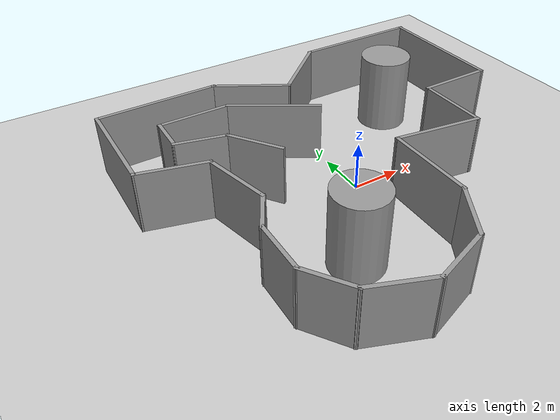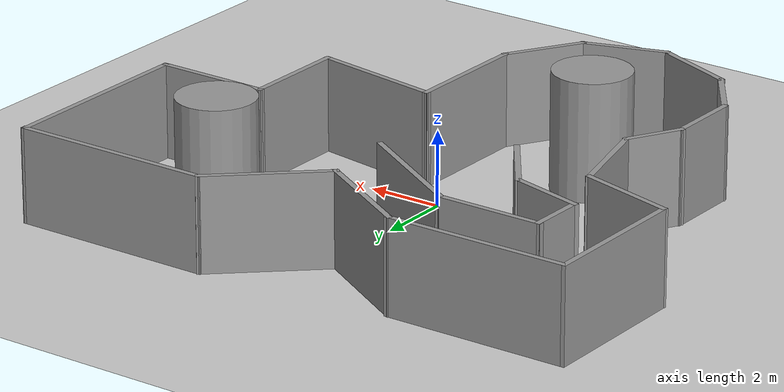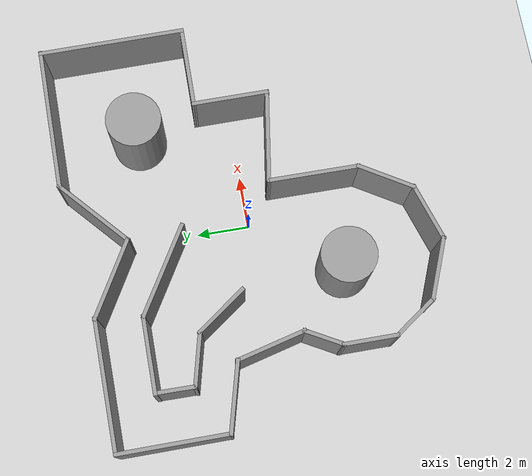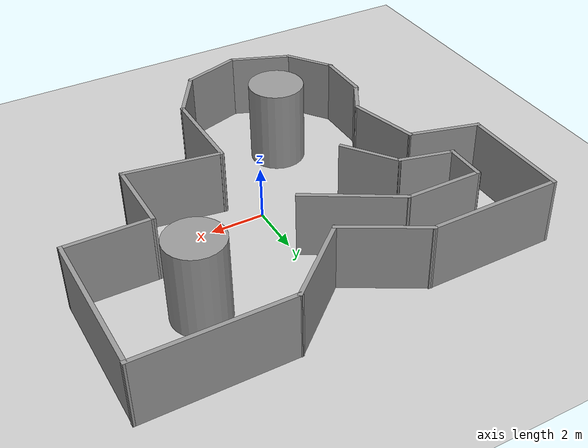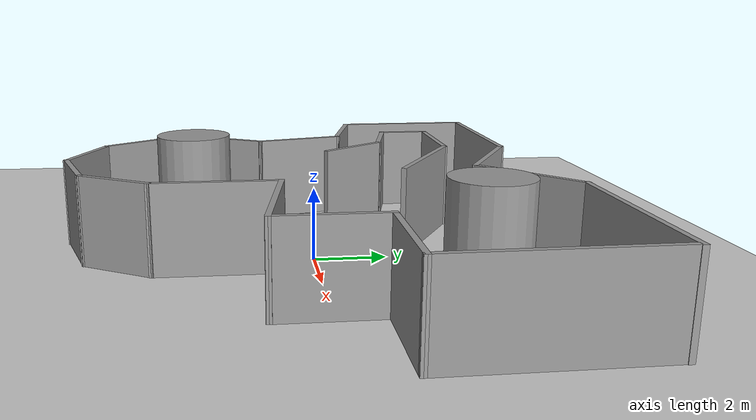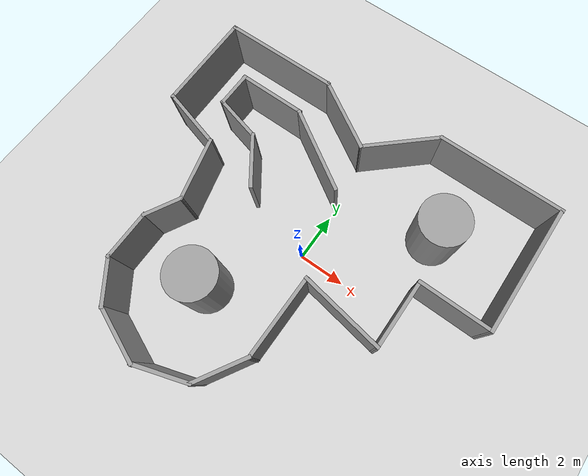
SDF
<sdf version="1.7">
 <world name="default">
  <light name="sun" type="directional">
   <pose>0 0 10 0 -0 0</pose>
   <diffuse>0.8 0.8 0.8 1</diffuse>
   <specular>0.2 0.2 0.2 1</specular>
   <attenuation>
    <range>1000</range>
    <constant>0.9</constant>
    <linear>0.01</linear>
    <quadratic>0.001</quadratic>
   </attenuation>
   <direction>-0.5 0.1 -0.9</direction>
   <spot><inner_angle>0</inner_angle><outer_angle>0</outer_angle><falloff>0</falloff></spot>
  </light>
  <model name="ground_plane">
   <static>1</static>
   <link name="link">
    <collision name="collision">
     <geometry><plane><normal>0 0 1</normal><size>100 100</size></plane></geometry>
     <surface>
      <contact><collide_bitmask>65535</collide_bitmask></contact>
      <friction><ode><mu>100</mu><mu2>50</mu2></ode></friction>
     </surface>
    </collision>
    <visual name="visual">
     <cast_shadows>0</cast_shadows>
     <geometry><plane><normal>0 0 1</normal><size>100 100</size></plane></geometry>
     <material>
      <script><uri>file://media/materials/scripts/gazebo.material</uri><name>Gazebo/Grey</name></script>
     </material>
    </visual>
   </link>
  </model>
  <gravity>0 0 -9.8</gravity>
  <magnetic_field>6e-06 2.3e-05 -4.2e-05</magnetic_field>
  <atmosphere type="adiabatic"/>
  <physics type="ode">
   <max_step_size>0.001</max_step_size>
   <real_time_factor>1</real_time_factor>
   <real_time_update_rate>1000</real_time_update_rate>
  </physics>
  <scene><ambient>0.4 0.4 0.4 1</ambient><background>0.7 0.7 0.7 1</background><shadows>1</shadows></scene>
  <audio><device>default</device></audio>
  <spherical_coordinates>
   <surface_model>EARTH_WGS84</surface_model>
   <latitude_deg>0</latitude_deg>
   <longitude_deg>0</longitude_deg>
   <elevation>0</elevation>
   <heading_deg>0</heading_deg>
  </spherical_coordinates>
  <model name="muri_mix">
   <pose>-0.192855 -0.0559 0 0 -0 0</pose>
   <link name="Wall_1">
    <collision name="Wall_1_Collision">
     <geometry><box><size>4.26138 0.15 2.5</size></box></geometry>
     <pose>0 0 1.25 0 -0 0</pose>
    </collision>
    <visual name="Wall_1_Visual">
     <pose>0 0 1.25 0 -0 0</pose>
     <geometry><box><size>4.26138 0.15 2.5</size></box></geometry>
     <material>
      <script><uri>file://media/materials/scripts/gazebo.material</uri><name>Gazebo/Grey</name></script>
      <ambient>1 1 1 1</ambient>
     </material>
     <meta><layer>0</layer></meta>
    </visual>
    <pose>-7.67157 4.10976 0 0 -0 1.57401</pose>
   </link>
   <link name="Wall_10">
    <collision name="Wall_10_Collision">
     <geometry><box><size>3.53515 0.15 2.5</size></box></geometry>
     <pose>0 0 1.25 0 -0 0</pose>
    </collision>
    <visual name="Wall_10_Visual">
     <pose>0 0 1.25 0 -0 0</pose>
     <geometry><box><size>3.53515 0.15 2.5</size></box></geometry>
     <material>
      <script><uri>file://media/materials/scripts/gazebo.material</uri><name>Gazebo/Grey</name></script>
      <ambient>1 1 1 1</ambient>
     </material>
     <meta><layer>0</layer></meta>
    </visual>
    <pose>1.21216 -2.58086 0 0 -0 -1.57575</pose>
   </link>
   <link name="Wall_11">
    <collision name="Wall_11_Collision">
     <geometry><box><size>2.322 0.15 2.5</size></box></geometry>
     <pose>0 0 1.25 0 -0 0</pose>
    </collision>
    <visual name="Wall_11_Visual">
     <pose>0 0 1.25 0 -0 0</pose>
     <geometry><box><size>2.322 0.15 2.5</size></box></geometry>
     <material>
      <script><uri>file://media/materials/scripts/gazebo.material</uri><name>Gazebo/Grey</name></script>
      <ambient>1 1 1 1</ambient>
     </material>
     <meta><layer>0</layer></meta>
    </visual>
    <pose>0.640187 -5.20166 0 0 -0 -2.11644</pose>
   </link>
   <link name="Wall_16">
    <collision name="Wall_16_Collision">
     <geometry><box><size>1.65465 0.15 2.5</size></box></geometry>
     <pose>0 0 1.25 0 -0 0</pose>
    </collision>
    <visual name="Wall_16_Visual">
     <pose>0 0 1.25 0 -0 0</pose>
     <geometry><box><size>1.65465 0.15 2.5</size></box></geometry>
     <material>
      <script><uri>file://media/materials/scripts/gazebo.material</uri><name>Gazebo/Grey</name></script>
      <ambient>1 1 1 1</ambient>
     </material>
     <meta><layer>0</layer></meta>
    </visual>
    <pose>-4.88204 -1.81965 0 0 -0 1.06422</pose>
   </link>
   <link name="Wall_18">
    <collision name="Wall_18_Collision">
     <geometry><box><size>2.75 0.15 2.5</size></box></geometry>
     <pose>0 0 1.25 0 -0 0</pose>
    </collision>
    <visual name="Wall_18_Visual">
     <pose>0 0 1.25 0 -0 0</pose>
     <geometry><box><size>2.75 0.15 2.5</size></box></geometry>
     <material>
      <script><uri>file://media/materials/scripts/gazebo.material</uri><name>Gazebo/Grey</name></script>
      <ambient>1 1 1 1</ambient>
     </material>
     <meta><layer>0</layer></meta>
    </visual>
    <pose>-6.40926 1.71762 0 0 -0 -0.261799</pose>
   </link>
   <link name="Wall_21">
    <collision name="Wall_21_Collision">
     <geometry><box><size>5.02028 0.15 2.5</size></box></geometry>
     <pose>0 0 1.25 0 -0 0</pose>
    </collision>
    <visual name="Wall_21_Visual">
     <pose>0 0 1.25 0 -0 0</pose>
     <geometry><box><size>5.02028 0.15 2.5</size></box></geometry>
     <material>
      <script><uri>file://media/materials/scripts/gazebo.material</uri><name>Gazebo/Grey</name></script>
      <ambient>1 1 1 1</ambient>
     </material>
     <meta><layer>0</layer></meta>
    </visual>
    <pose>-5.22302 6.18555 0 0 -0 0.00826</pose>
   </link>
   <link name="Wall_22">
    <collision name="Wall_22_Collision">
     <geometry><box><size>3.28763 0.15 2.5</size></box></geometry>
     <pose>0 0 1.25 0 -0 0</pose>
    </collision>
    <visual name="Wall_22_Visual">
     <pose>0 0 1.25 0 -0 0</pose>
     <geometry><box><size>3.28763 0.15 2.5</size></box></geometry>
     <material>
      <script><uri>file://media/materials/scripts/gazebo.material</uri><name>Gazebo/Grey</name></script>
      <ambient>1 1 1 1</ambient>
     </material>
     <meta><layer>0</layer></meta>
    </visual>
    <pose>-1.45568 5.41055 0 0 -0 -0.531497</pose>
   </link>
   <link name="Wall_26">
    <collision name="Wall_26_Collision">
     <geometry><box><size>3.42031 0.15 2.5</size></box></geometry>
     <pose>0 0 1.25 0 -0 0</pose>
    </collision>
    <visual name="Wall_26_Visual">
     <pose>0 0 1.25 0 -0 0</pose>
     <geometry><box><size>3.42031 0.15 2.5</size></box></geometry>
     <material>
      <script><uri>file://media/materials/scripts/gazebo.material</uri><name>Gazebo/Grey</name></script>
      <ambient>1 1 1 1</ambient>
     </material>
     <meta><layer>0</layer></meta>
    </visual>
    <pose>1.11407 5.70714 0 0 -0 0.731035</pose>
   </link>
   <link name="Wall_28">
    <collision name="Wall_28_Collision">
     <geometry><box><size>2.12243 0.15 2.5</size></box></geometry>
     <pose>0 0 1.25 0 -0 0</pose>
    </collision>
    <visual name="Wall_28_Visual">
     <pose>0 0 1.25 0 -0 0</pose>
     <geometry><box><size>2.12243 0.15 2.5</size></box></geometry>
     <material>
      <script><uri>file://media/materials/scripts/gazebo.material</uri><name>Gazebo/Grey</name></script>
      <ambient>1 1 1 1</ambient>
     </material>
     <meta><layer>0</layer></meta>
    </visual>
    <pose>-5.24706 -3.44621 0 0 -0 -1.5708</pose>
   </link>
   <link name="Wall_31">
    <collision name="Wall_31_Collision">
     <geometry><box><size>2.00158 0.15 2.5</size></box></geometry>
     <pose>0 0 1.25 0 -0 0</pose>
    </collision>
    <visual name="Wall_31_Visual">
     <pose>0 0 1.25 0 -0 0</pose>
     <geometry><box><size>2.00158 0.15 2.5</size></box></geometry>
     <material>
      <script><uri>file://media/materials/scripts/gazebo.material</uri><name>Gazebo/Grey</name></script>
      <ambient>1 1 1 1</ambient>
     </material>
     <meta><layer>0</layer></meta>
    </visual>
    <pose>-4.7146 -5.18978 0 0 -0 -0.958021</pose>
   </link>
   <link name="Wall_34">
    <collision name="Wall_34_Collision">
     <geometry><box><size>2.47274 0.15 2.5</size></box></geometry>
     <pose>0 0 1.25 0 -0 0</pose>
    </collision>
    <visual name="Wall_34_Visual">
     <pose>0 0 1.25 0 -0 0</pose>
     <geometry><box><size>2.47274 0.15 2.5</size></box></geometry>
     <material>
      <script><uri>file://media/materials/scripts/gazebo.material</uri><name>Gazebo/Grey</name></script>
      <ambient>1 1 1 1</ambient>
     </material>
     <meta><layer>0</layer></meta>
    </visual>
    <pose>-3.10334 -6.37721 0 0 -0 -0.379364</pose>
   </link>
   <link name="Wall_37">
    <collision name="Wall_37_Collision">
     <geometry><box><size>2.35761 0.15 2.5</size></box></geometry>
     <pose>0 0 1.25 0 -0 0</pose>
    </collision>
    <visual name="Wall_37_Visual">
     <pose>0 0 1.25 0 -0 0</pose>
     <geometry><box><size>2.35761 0.15 2.5</size></box></geometry>
     <material>
      <script><uri>file://media/materials/scripts/gazebo.material</uri><name>Gazebo/Grey</name></script>
      <ambient>1 1 1 1</ambient>
     </material>
     <meta><layer>0</layer></meta>
    </visual>
    <pose>-0.973977 -6.46863 0 0 -0 0.311848</pose>
   </link>
   <link name="Wall_39">
    <collision name="Wall_39_Collision">
     <geometry><box><size>2.77141 0.15 2.5</size></box></geometry>
     <pose>0 0 1.25 0 -0 0</pose>
    </collision>
    <visual name="Wall_39_Visual">
     <pose>0 0 1.25 0 -0 0</pose>
     <geometry><box><size>2.77141 0.15 2.5</size></box></geometry>
     <material>
      <script><uri>file://media/materials/scripts/gazebo.material</uri><name>Gazebo/Grey</name></script>
      <ambient>1 1 1 1</ambient>
     </material>
     <meta><layer>0</layer></meta>
    </visual>
    <pose>-4.83528 0.109673 0 0 -0 -1.32552</pose>
   </link>
   <link name="Wall_41">
    <collision name="Wall_41_Collision">
     <geometry><box><size>3.64593 0.15 2.5</size></box></geometry>
     <pose>0 0 1.25 0 -0 0</pose>
    </collision>
    <visual name="Wall_41_Visual">
     <pose>0 0 1.25 0 -0 0</pose>
     <geometry><box><size>3.64593 0.15 2.5</size></box></geometry>
     <material>
      <script><uri>file://media/materials/scripts/gazebo.material</uri><name>Gazebo/Grey</name></script>
      <ambient>1 1 1 1</ambient>
     </material>
     <meta><layer>0</layer></meta>
    </visual>
    <pose>2.94765 -1.15764 0 0 -0 -0.15466</pose>
   </link>
   <link name="Wall_42">
    <collision name="Wall_42_Collision">
     <geometry><box><size>2.95 0.15 2.5</size></box></geometry>
     <pose>0 0 1.25 0 -0 0</pose>
    </collision>
    <visual name="Wall_42_Visual">
     <pose>0 0 1.25 0 -0 0</pose>
     <geometry><box><size>2.95 0.15 2.5</size></box></geometry>
     <material>
      <script><uri>file://media/materials/scripts/gazebo.material</uri><name>Gazebo/Grey</name></script>
      <ambient>1 1 1 1</ambient>
     </material>
     <meta><layer>0</layer></meta>
    </visual>
    <pose>4.67475 -0.0269 0 0 -0 1.5708</pose>
   </link>
   <link name="Wall_44">
    <collision name="Wall_44_Collision">
     <geometry><box><size>3.15671 0.15 2.5</size></box></geometry>
     <pose>0 0 1.25 0 -0 0</pose>
    </collision>
    <visual name="Wall_44_Visual">
     <pose>0 0 1.25 0 -0 0</pose>
     <geometry><box><size>3.15671 0.15 2.5</size></box></geometry>
     <material>
      <script><uri>file://media/materials/scripts/gazebo.material</uri><name>Gazebo/Grey</name></script>
      <ambient>1 1 1 1</ambient>
     </material>
     <meta><layer>0</layer></meta>
    </visual>
    <pose>6.17808 1.365 0 0 -0 -0.005387</pose>
   </link>
   <link name="Wall_46">
    <collision name="Wall_46_Collision">
     <geometry><box><size>2.10303 0.15 2.5</size></box></geometry>
     <pose>0 0 1.25 0 -0 0</pose>
    </collision>
    <visual name="Wall_46_Visual">
     <pose>0 0 1.25 0 -0 0</pose>
     <geometry><box><size>2.10303 0.15 2.5</size></box></geometry>
     <material>
      <script><uri>file://media/materials/scripts/gazebo.material</uri><name>Gazebo/Grey</name></script>
      <ambient>1 1 1 1</ambient>
     </material>
     <meta><layer>0</layer></meta>
    </visual>
    <pose>-4.89191 2.79253 0 0 -0 -0.24769</pose>
   </link>
   <link name="Wall_47">
    <collision name="Wall_47_Collision">
     <geometry><box><size>2.33473 0.15 2.5</size></box></geometry>
     <pose>0 0 1.25 0 -0 0</pose>
    </collision>
    <visual name="Wall_47_Visual">
     <pose>0 0 1.25 0 -0 0</pose>
     <geometry><box><size>2.33473 0.15 2.5</size></box></geometry>
     <material>
      <script><uri>file://media/materials/scripts/gazebo.material</uri><name>Gazebo/Grey</name></script>
      <ambient>1 1 1 1</ambient>
     </material>
     <meta><layer>0</layer></meta>
    </visual>
    <pose>-3.2873 1.66629 0 0 -0 -0.947325</pose>
   </link>
   <link name="Wall_5">
    <collision name="Wall_5_Collision">
     <geometry><box><size>5.5 0.15 2.5</size></box></geometry>
     <pose>0 0 1.25 0 -0 0</pose>
    </collision>
    <visual name="Wall_5_Visual">
     <pose>0 0 1.25 0 -0 0</pose>
     <geometry><box><size>5.5 0.15 2.5</size></box></geometry>
     <material>
      <script><uri>file://media/materials/scripts/gazebo.material</uri><name>Gazebo/Grey</name></script>
      <ambient>1 1 1 1</ambient>
     </material>
     <meta><layer>0</layer></meta>
    </visual>
    <pose>5.00641 6.79884 0 0 -0 0</pose>
   </link>
   <link name="Wall_50">
    <collision name="Wall_50_Collision">
     <geometry><box><size>1.59133 0.15 2.5</size></box></geometry>
     <pose>0 0 1.25 0 -0 0</pose>
    </collision>
    <visual name="Wall_50_Visual">
     <pose>0 0 1.25 0 -0 0</pose>
     <geometry><box><size>1.59133 0.15 2.5</size></box></geometry>
     <material>
      <script><uri>file://media/materials/scripts/gazebo.material</uri><name>Gazebo/Grey</name></script>
      <ambient>1 1 1 1</ambient>
     </material>
     <meta><layer>0</layer></meta>
    </visual>
    <pose>-5.81581 3.75257 0 0 -0 1.56024</pose>
   </link>
   <link name="Wall_51">
    <collision name="Wall_51_Collision">
     <geometry><box><size>2.96296 0.15 2.5</size></box></geometry>
     <pose>0 0 1.25 0 -0 0</pose>
    </collision>
    <visual name="Wall_51_Visual">
     <pose>0 0 1.25 0 -0 0</pose>
     <geometry><box><size>2.96296 0.15 2.5</size></box></geometry>
     <material>
      <script><uri>file://media/materials/scripts/gazebo.material</uri><name>Gazebo/Grey</name></script>
      <ambient>1 1 1 1</ambient>
     </material>
     <meta><layer>0</layer></meta>
    </visual>
    <pose>-4.41695 4.47319 0 0 -0 0</pose>
   </link>
   <link name="Wall_52">
    <collision name="Wall_52_Collision">
     <geometry><box><size>3.78349 0.15 2.5</size></box></geometry>
     <pose>0 0 1.25 0 -0 0</pose>
    </collision>
    <visual name="Wall_52_Visual">
     <pose>0 0 1.25 0 -0 0</pose>
     <geometry><box><size>3.78349 0.15 2.5</size></box></geometry>
     <material>
      <script><uri>file://media/materials/scripts/gazebo.material</uri><name>Gazebo/Grey</name></script>
      <ambient>1 1 1 1</ambient>
     </material>
     <meta><layer>0</layer></meta>
    </visual>
    <pose>-1.45925 3.51236 0 0 -0 -0.547444</pose>
   </link>
   <link name="Wall_6">
    <collision name="Wall_6_Collision">
     <geometry><box><size>5.59197 0.15 2.5</size></box></geometry>
     <pose>0 0 1.25 0 -0 0</pose>
    </collision>
    <visual name="Wall_6_Visual">
     <pose>0 0 1.25 0 -0 0</pose>
     <geometry><box><size>5.59197 0.15 2.5</size></box></geometry>
     <material>
      <script><uri>file://media/materials/scripts/gazebo.material</uri><name>Gazebo/Grey</name></script>
      <ambient>1 1 1 1</ambient>
     </material>
     <meta><layer>0</layer></meta>
    </visual>
    <pose>7.67136 4.07787 0 0 -0 -1.5671</pose>
   </link>
   <static>1</static>
  </model>
  <model name="unit_cylinder">
   <pose>4.02659 3.63046 1.56332 0 -0 0</pose>
   <link name="link">
    <inertial>
     <mass>1</mass>
     <inertia><ixx>0.145833</ixx><ixy>0</ixy><ixz>0</ixz><iyy>0.145833</iyy><iyz>0</iyz><izz>0.125</izz></inertia>
    </inertial>
    <collision name="collision">
     <geometry><cylinder><radius>1.03973</radius><length>3.14301</length></cylinder></geometry>
    </collision>
    <visual name="visual">
     <geometry><cylinder><radius>1.03973</radius><length>3.14301</length></cylinder></geometry>
     <material>
      <script><uri>file://media/materials/scripts/gazebo.material</uri><name>Gazebo/Grey</name></script>
      <ambient>1 1 1 1</ambient>
      <diffuse>1 1 1 1</diffuse>
      <specular>0 0 0 1</specular>
      <emissive>0 0 0 1</emissive>
     </material>
    </visual>
   </link>
  </model>
  <model name="unit_cylinder_clone">
   <pose>-2.35534 -3.25747 1.56332 0 -0 0</pose>
   <link name="link">
    <inertial>
     <mass>1</mass>
     <inertia><ixx>0.145833</ixx><ixy>0</ixy><ixz>0</ixz><iyy>0.145833</iyy><iyz>0</iyz><izz>0.125</izz></inertia>
    </inertial>
    <collision name="collision">
     <geometry><cylinder><radius>1.03973</radius><length>3.14301</length></cylinder></geometry>
    </collision>
    <visual name="visual">
     <geometry><cylinder><radius>1.03973</radius><length>3.14301</length></cylinder></geometry>
     <material>
      <script><uri>file://media/materials/scripts/gazebo.material</uri><name>Gazebo/Grey</name></script>
      <ambient>1 1 1 1</ambient>
      <diffuse>1 1 1 1</diffuse>
      <specular>0 0 0 1</specular>
      <emissive>0 0 0 1</emissive>
     </material>
    </visual>
   </link>
  </model>
 </world>
</sdf>
